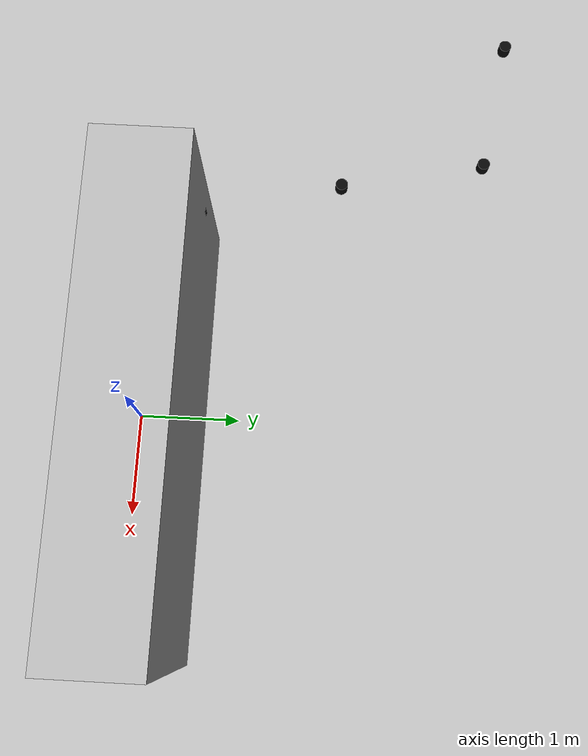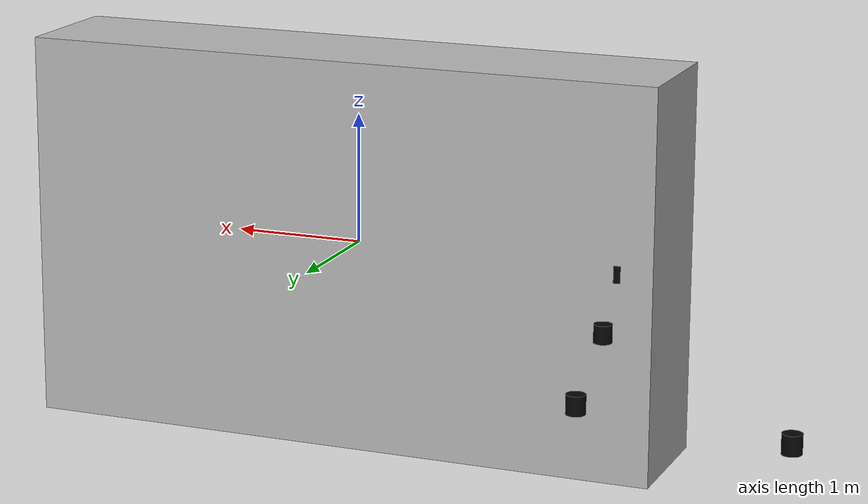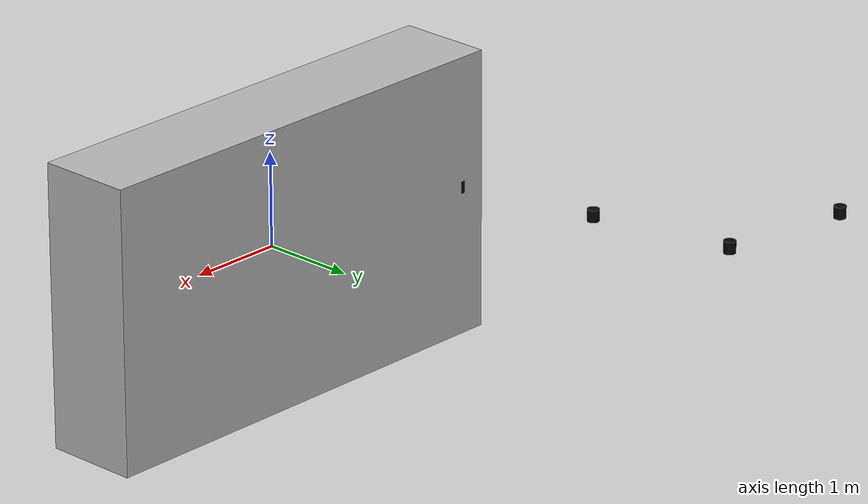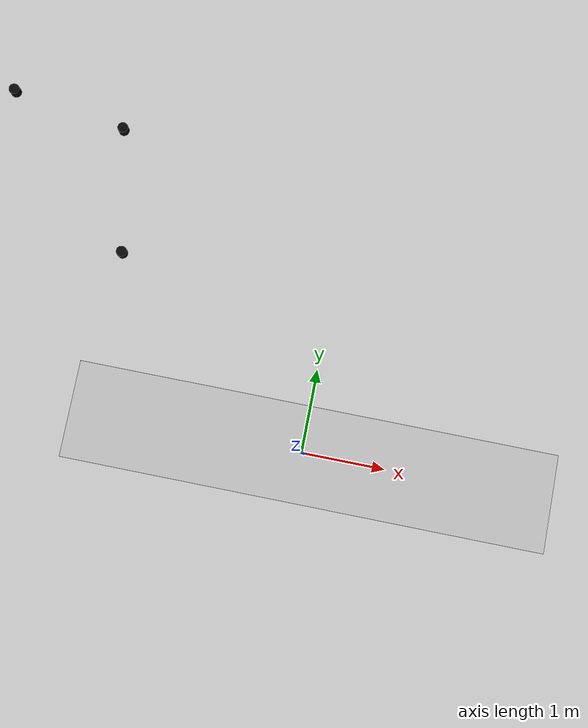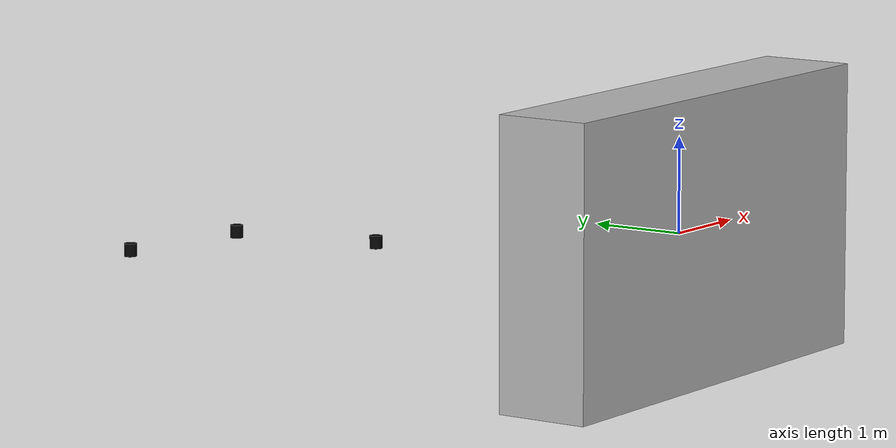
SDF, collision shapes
<?xml version="1.0" encoding="UTF-8"?>
<sdf version='1.9'>

  <model name='pipe_model'>
    <static>1</static>
    <link name='pipe_base_link'>
      <inertial>
        <pose>0 0 0 0 0 0</pose>
        <mass>235.4152162093547</mass>
        <inertia>
          <ixx>533.8067881323725</ixx>
          <ixy>1.5948978886996961e-13</ixy>
          <ixz>-444.4643834093107</ixz>
          <iyy>1033.1685999307199</iyy>
          <iyz>2.3032939573935558e-13</iyz>
          <izz>504.90262862240178</izz>
        </inertia>
      </inertial>

      <collision name='pipe_base_link_collision'>
        <pose>0 0 0 0 0 0</pose>
        <geometry>
          <box>
            <size>5 1 3</size>
          </box>
        </geometry>
      </collision>

      <visual name='pipe_base_visual'>
         <pose> 0 0 0 0 0 0 </pose>
            <geometry>
            <mesh>

            <uri>model://robotx26/pipe_task/pipe_task_var1/meshes/pipe2_var1.glb</uri>
            </mesh>

            </geometry>
      </visual>

    </link>

    <include>
      <name>pipe_led_1</name>
      <uri>model://robotx26/pipe_led</uri>
      <pose>-0.85 0.2 0.1 1.57079 0 1.57079</pose>

    </include>

    <include>
      <name>pipe_led_2</name>
      <uri>model://robotx26/pipe_led</uri>
      <pose>-2.2272 0.4422 0.1 1.57079 0 1.5709</pose>

    </include>

    <include>
      <name>pipe_led_3</name>
      <uri>model://robotx26/pipe_led</uri>
      <pose>-2.58695 1.93695 0.1 1.57079 0 1.57079</pose>

    </include>

    <include>
      <name>pipe_led_4</name>
      <uri>model://robotx26/pipe_led</uri>
      <pose>-2.90117 3.45067 0.1 1.57079 0 1.57079</pose>

    </include>

    <include>
      <name>pipe_led_5</name>
      <uri>model://robotx26/pipe_led</uri>
      <pose>-4.323 3.67389 0.1 1.57079 0 1.57079</pose>

    </include>

  </model>
</sdf>

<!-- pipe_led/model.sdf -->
<sdf version='1.9'>
  <model name='pipe_led'>
    <static>true</static>
    <link name='pipe_led'>
      <pose>0 0 0 1.57 0 0</pose>
      <collision name='pipe_led_collision'>
        <geometry>
          <cylinder>
            <radius>0.064</radius>
            <length>0.12906</length>
          </cylinder>
        </geometry>
      </collision>

      <visual name='pipe_led_visual'>
        <geometry>
          <cylinder>
            <radius>0.064</radius>
            <length>0.12906</length>
          </cylinder>
        </geometry>
        <material>
          <ambient>0.02 0.02 0.02 1</ambient>
          <diffuse>0.02 0.02 0.02 1</diffuse>
          <specular>0 0 0 1</specular>
          <emissive>0 0 0 1</emissive>
        </material>
      </visual>
    </link>

    <plugin filename="libgz_led_plugin.so" name="gz::sim::systems::LedPlugin">
      <startup_mode>off</startup_mode>

      <led name="led">
        <visual_name>pipe_led::pipe_led_visual</visual_name>
        <default_state>
          <color>0 0 0 1</color>
          <intensity>0.0</intensity>
        </default_state>
      </led>

      <mode name='off'>
        <step always_on='true'><color>0 0 0 1</color></step>
      </mode>

      <mode name='steady_red'>
        <step always_on='true'><color>1 0 0 1</color></step>
      </mode>

      <mode name='steady_green'>
        <step always_on='true'><color>0 1 0 1</color></step>
      </mode>
    </plugin>
  </model>
</sdf>
